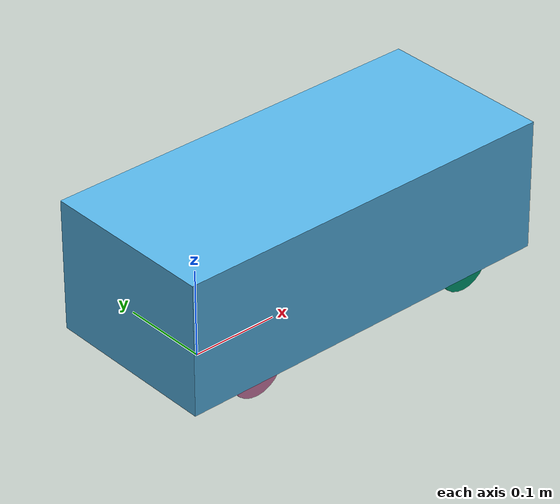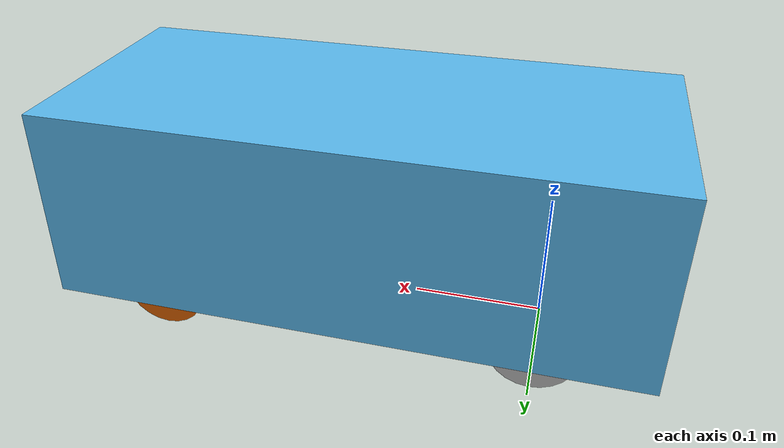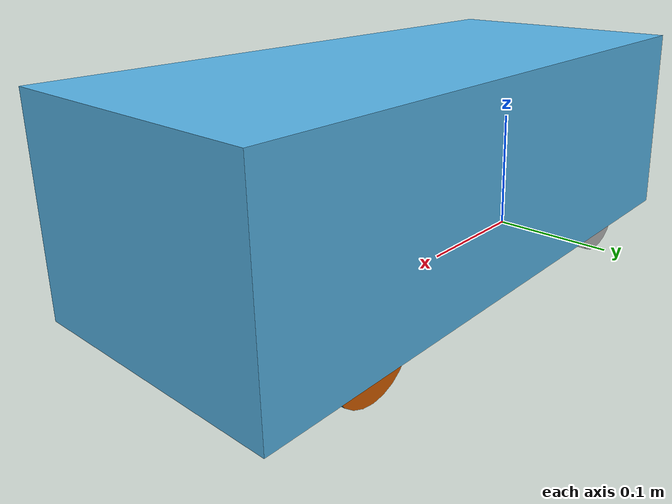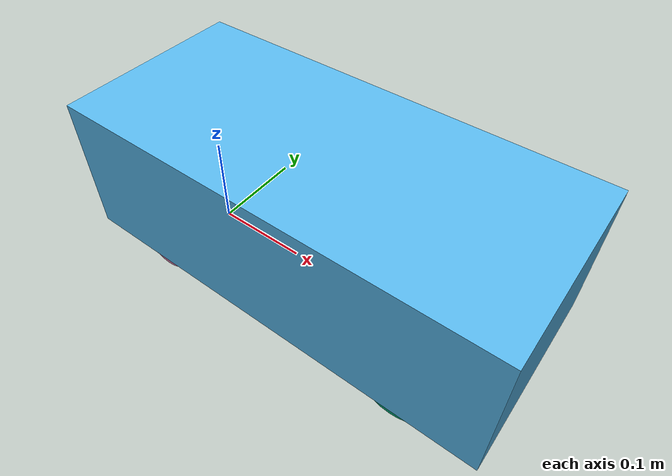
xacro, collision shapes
<?xml version="1.0"?>
<robot xmlns:xacro="http://www.ros.org/wiki/xacro" name="car">

  <xacro:property name="wheel_radius" value="0.0325" />
  <xacro:property name="wheel_width" value="0.025" />

  <xacro:include filename="$(find robot_description)/urdf/car_gazebo.xacro" />

  <xacro:macro name="default_origin">
       <origin xyz="0 0 0" rpy="0 0 0"/>
  </xacro:macro>

  <xacro:macro name="wheel_collision" params="roll">
    <collision>
        <origin xyz="0 0 0" rpy="${roll} 0 0"/>
        <geometry>
          <cylinder radius="${wheel_radius}" length="${wheel_width}"/>
        </geometry>
    </collision>
  </xacro:macro>

  <xacro:macro name="wheel_inertial" params="roll">
    <inertial>
      <origin rpy="${roll} 0 0" xyz="0 0 0"/>
      <mass value="0.001"/>
      <inertia
        ixx=".01" ixy="0.0" ixz="0.0"
        iyy=".01" iyz="0.0"
        izz=".01"/>
    </inertial>
  </xacro:macro>

  <xacro:macro name="wheel_visual" params="roll">
    <visual>
      <geometry>
        <mesh filename="package://robot_description/models/car_robot/meshes/wheel.dae"/>
      </geometry>
      <origin xyz="0 0 0" rpy="${roll} 0 0"/>
    </visual>
  </xacro:macro>

  <xacro:macro name="dummy_visual">
    <visual>
      <geometry>
        <box size =".001 .001 .001"/>
      </geometry>
      <xacro:default_origin />
    </visual>
  </xacro:macro>

  <transmission name="wheel_steering_tran_left">
        <type>transmission_interface/SimpleTransmission</type>
        <joint name="left_steering">
            <hardwareInterface>hardware_interface/VelocityJointInterface</hardwareInterface>
        </joint>
        <actuator name="steering_motor_left">
            <hardwareInterface>hardware_interface/VelocityJointInterface</hardwareInterface>
            <mechanicalReduction>1</mechanicalReduction>
        </actuator>
  </transmission>

  <transmission name="wheel_steering_tran_right">
        <type>transmission_interface/SimpleTransmission</type>
        <joint name="front_steer_joint">
            <hardwareInterface>hardware_interface/PositionJointInterface</hardwareInterface>
        </joint>
        <actuator name="steering_motor_right">
            <hardwareInterface>hardware_interface/PositionJointInterface</hardwareInterface>
            <mechanicalReduction>1</mechanicalReduction>
        </actuator>
  </transmission>

  <transmission name="drive_tran_left">
        <type>transmission_interface/SimpleTransmission</type>
        <joint name="rear_wheel_joint">
            <hardwareInterface>hardware_interface/VelocityJointInterface</hardwareInterface>
        </joint>
        <actuator name="drive_motor_left">
            <hardwareInterface>hardware_interface/VelocityJointInterface</hardwareInterface>
            <mechanicalReduction>1</mechanicalReduction>
        </actuator>
  </transmission>

  <transmission name="drive_tran_right">
        <type>transmission_interface/SimpleTransmission</type>
        <joint name="right_rear_wheel_joint">
            <hardwareInterface>hardware_interface/EffortJointInterface</hardwareInterface>
        </joint>
        <actuator name="drive_motor_right">
            <hardwareInterface>hardware_interface/EffortJointInterface</hardwareInterface>
            <mechanicalReduction>1</mechanicalReduction>
        </actuator>
  </transmission>

  <transmission name="drive_tran_front_left">
        <type>transmission_interface/SimpleTransmission</type>
        <joint name="left_front_wheel_joint">
            <hardwareInterface>hardware_interface/EffortJointInterface</hardwareInterface>
        </joint>
        <actuator name="drive_motor_front_left">
            <hardwareInterface>hardware_interface/EffortJointInterface</hardwareInterface>
            <mechanicalReduction>1</mechanicalReduction>
        </actuator>
  </transmission>

  <transmission name="drive_tran_front_right">
        <type>transmission_interface/SimpleTransmission</type>
        <joint name="right_front_wheel_joint">
            <hardwareInterface>hardware_interface/EffortJointInterface</hardwareInterface>
        </joint>
        <actuator name="drive_motor_front_right">
            <hardwareInterface>hardware_interface/EffortJointInterface</hardwareInterface>
            <mechanicalReduction>1</mechanicalReduction>
        </actuator>
  </transmission>

  <link name="base_link">
    <collision>
        <xacro:default_origin />
        <geometry>
            <box size="0.001 0.001 0.001"/>
        </geometry>
    </collision>

    <xacro:dummy_visual />
  </link>

  <link name="body">
    <inertial>
      <origin xyz="0.2 0 0.043" rpy="0 0 0"/>
      <mass value="2.5" />
      <inertia ixx="0.0332083" ixy="0.0" ixz="0.0" iyy="0.01302083" iyz="0.0" izz="0.03685416"/>
    </inertial>

    <collision>
        <origin rpy="0 0 0" xyz="0.14 0 0.063"/>
        <geometry>
            <box size="0.45 0.2 0.15"/>
        </geometry>
    </collision>

    <visual>
      <geometry>
        <!--Dimensions: 37x20xheight   height may very depending on components, should be ~20cm-->
        <mesh filename="package://robot_description/models/car_robot/meshes/car.dae"/>
      </geometry>
      <origin rpy="0 0 0" xyz="0.147 0 0.063"/>
    </visual>
  </link>

  <joint name="front_steer_joint" type="revolute">
    <parent link="base_link"/>
    <child link="right_front_steering"/>
    <origin xyz="0.28 -0.08 ${wheel_radius}"/>
    <axis  xyz="0 0 1"/>
    <limit lower="-0.87" upper="0.87" effort="10000" velocity="500"/>
  </joint>

  <joint name="left_steering" type="revolute">
    <parent link="base_link"/>
    <child link="left_front_steering"/>
    <origin xyz="0.28 0.079 ${wheel_radius}"/>
    <axis   xyz="0 0 1"/>
    <limit lower="-0.87" upper="0.87" effort="10000" velocity="500"/>
  </joint>

  <link name="right_front_steering">
    <xacro:wheel_collision roll="1.57075"/>
    <xacro:wheel_inertial roll="1.57075"/>
    <xacro:dummy_visual />
  </link>

  <joint name="right_front_wheel_joint" type="continuous">
    <parent link="right_front_steering"/>
    <child link="right_front_wheel"/>
    <xacro:default_origin />
    <axis   xyz="0 1 0"/>
    <limit effort="10000" velocity="1000"/>
    <joint_properties damping="1.0" friction="1.0"/>
  </joint>

  <link name="right_front_wheel">
    <xacro:wheel_collision roll="1.57075"/>
    <xacro:wheel_inertial roll="1.57075"/>
    <xacro:wheel_visual roll="1.57075"/>
  </link>

  <link name="left_front_steering">
    <xacro:wheel_collision roll="1.57075"/>
    <xacro:wheel_inertial roll="1.57075"/>
    <xacro:dummy_visual />
  </link>

  <joint name="left_front_wheel_joint" type="continuous">
    <parent link="left_front_steering"/>
    <child link="left_front_wheel"/>
    <xacro:default_origin />
    <axis xyz="0 1 0"/>
    <limit effort="10000" velocity="1000"/>
    <joint_properties damping="1.0" friction="1.0"/>
  </joint>

  <link name="left_front_wheel">
    <xacro:wheel_collision roll="-1.57075"/>
    <xacro:wheel_inertial roll="-1.57075"/>
    <xacro:wheel_visual roll="-1.57075"/>
  </link>

  <joint name="base_link_to_body" type="fixed">
    <parent link="base_link"/>
    <child link="body"/>
    <origin xyz="0 0 ${wheel_radius}"/>
    <axis   xyz="0 1 0"/>
  </joint>

  <joint name="right_rear_wheel_joint" type="continuous">
    <parent link="body"/>
    <child link="right_rear_wheel"/>
    <origin xyz="0 -0.08 0.0"/>
    <axis   xyz="0 1 0"/>
    <limit effort="10000" velocity="1000"/>
    <joint_properties damping="1.0" friction="1.0"/>
  </joint>

  <link name="right_rear_wheel">
    <xacro:wheel_collision roll="1.57075"/>
    <xacro:wheel_inertial roll="1.57075"/>
    <xacro:wheel_visual roll="1.57075"/>
  </link>

  <joint name="rear_wheel_joint" type="continuous">
    <parent link="body"/>
    <child link="left_rear_wheel"/>
    <origin xyz="0 0.079 0.0"/>
    <axis   xyz="0 1 0"/>
    <limit effort="10000" velocity="1000"/>
    <joint_properties damping="1.0" friction="1.0"/>
  </joint>

  <link name="left_rear_wheel">
    <xacro:wheel_collision roll="-1.57075"/>
    <xacro:wheel_inertial roll="-1.57075"/>
    <xacro:wheel_visual roll="-1.57075"/>
  </link>

</robot>
